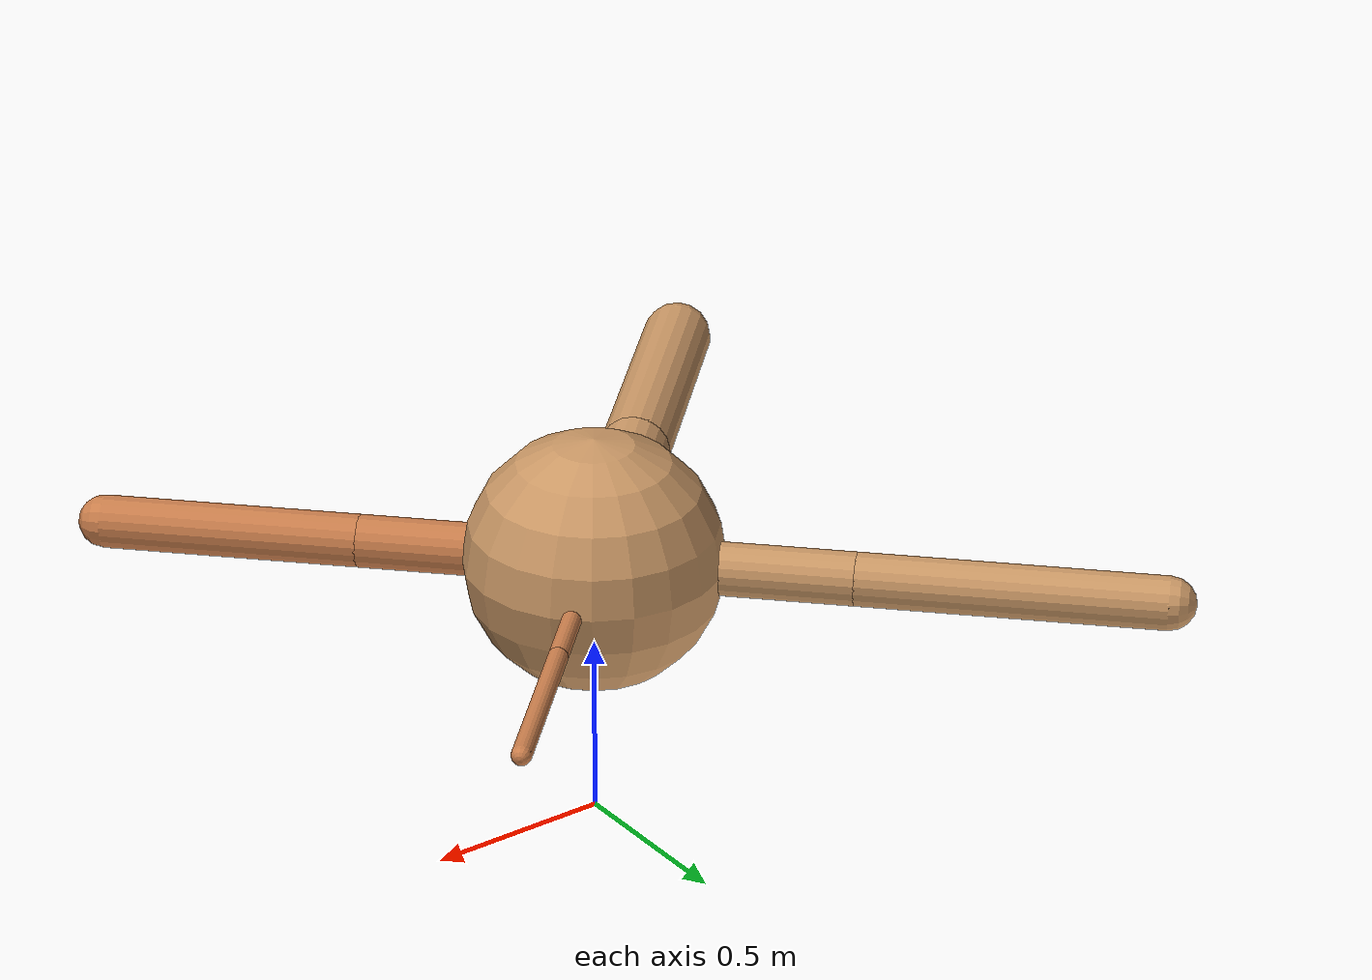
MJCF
<?xml version="1.0" ?>
<mujoco model="ant">

	<compiler angle="degree" coordinate="local" inertiafromgeom="true"/>

	<option integrator="RK4" timestep="0.01"/>

	<custom>

		<numeric data="0.0 0.0 0.55 1.0 0.0 0.0 0.0 0.0 1.0 0.0 -1.0 0.0 -1.0 0.0 1.0" name="init_qpos"/>

	</custom>

	<default>

		<joint armature="1" damping="1" limited="true"/>

		<geom conaffinity="0" condim="3" density="5.0" friction="1.5 0.1 0.1" margin="0.01" rgba="0.8 0.6 0.4 1"/>

	</default>

	<worldbody>

		<body name="torso" pos="0 0 0.75">

			<geom name="torso_geom" pos="0 0 0" size="0.3483419177617526" type="sphere"/>

			<!--joint armature="0" damping="0" limited="false" margin="0.01" name="root" pos="0 0 0" type="free"/-->

			<body name="front_left_leg" pos="0 0 0">

				<geom fromto="0 0 0 0.2 0.2 0" name="aux_1_geom" size="0.026128383658355795" type="capsule" rgba=".8 .5 .3 1"/>

				<body name="aux_1" pos="0.2 0.2 0">

					<joint axis="0 0 1" name="hip_1" pos="0.0 0.0 0.0" range="-40 40" type="hinge"/>

					<geom fromto="0 0 0 0.17675719853632055 0.17675719853632055 0" name="left_leg_geom" size="0.026128383658355795" type="capsule" rgba=".8 .5 .3 1"/>

					<body pos="0.17675719853632055 0.17675719853632055 0" name="front_left_foot">

						<joint axis="-1 1 0" name="ankle_1" pos="0.0 0.0 0.0" range="30 100" type="hinge"/>

						<geom fromto="0 0 0 0.3535143970726411 0.3535143970726411 0" name="left_ankle_geom" size="0.026128383658355795" type="capsule" rgba=".8 .5 .3 1"/>

					</body>

				</body>

			</body>

			<body name="front_right_leg" pos="0 0 0">

				<geom fromto="0 0 0 -0.2 0.2 0" name="aux_2_geom" size="0.07100722201231034" type="capsule"/>

				<body name="aux_2" pos="-0.2 0.2 0">

					<joint axis="0 0 1" name="hip_2" pos="0.0 0.0 0.0" range="-40 40" type="hinge"/>

					<geom fromto="0 0 0 -0.2872693187417079 0.2872693187417079 0" name="right_leg_geom" size="0.07100722201231034" type="capsule"/>

					<body pos="-0.2872693187417079 0.2872693187417079 0" name="front_right_foot">

						<joint axis="1 1 0" name="ankle_2" pos="0.0 0.0 0.0" range="-100 -30" type="hinge"/>

						<geom fromto="0 0 0 -0.5745386374834158 0.5745386374834158 0" name="right_ankle_geom" size="0.07100722201231034" type="capsule"/>

					</body>

				</body>

			</body>

			<body name="left_back_leg" pos="0 0 0">

				<geom fromto="0 0 0 -0.2 -0.2 0" name="aux_3_geom" size="0.0975619858933116" type="capsule"/>

				<body name="aux_3" pos="-0.2 -0.2 0">

					<joint axis="0 0 1" name="hip_3" pos="0.0 0.0 0.0" range="-40 40" type="hinge"/>

					<geom fromto="0 0 0 -0.26432728597812943 -0.26432728597812943 0" name="back_leg_geom" size="0.0975619858933116" type="capsule"/>

					<body pos="-0.26432728597812943 -0.26432728597812943 0" name="left_back_foot">

						<joint axis="-1 1 0" name="ankle_3" pos="0.0 0.0 0.0" range="-100 -30" type="hinge"/>

						<geom fromto="0 0 0 -0.5286545719562589 -0.5286545719562589 0" name="third_ankle_geom" size="0.0975619858933116" type="capsule"/>

					</body>

				</body>

			</body>

			<body name="right_back_leg" pos="0 0 0">

				<geom fromto="0 0 0 0.2 -0.2 0" name="aux_4_geom" size="0.07038729236264525" type="capsule" rgba=".8 .5 .3 1"/>

				<body name="aux_4" pos="0.2 -0.2 0">

					<joint axis="0 0 1" name="hip_4" pos="0.0 0.0 0.0" range="-40 40" type="hinge"/>

					<geom fromto="0 0 0 0.24501288128075013 -0.24501288128075013 0" name="rightback_leg_geom" size="0.07038729236264525" type="capsule" rgba=".8 .5 .3 1"/>

					<body pos="0.24501288128075013 -0.24501288128075013 0" name="right_back_foot">

						<joint axis="1 1 0" name="ankle_4" pos="0.0 0.0 0.0" range="30 100" type="hinge"/>

						<geom fromto="0 0 0 0.49002576256150027 -0.49002576256150027 0" name="fourth_ankle_geom" size="0.07038729236264525" type="capsule" rgba=".8 .5 .3 1"/>

					</body>

				</body>

			</body>

		</body>

	</worldbody>

	<actuator>

		<motor ctrllimited="true" ctrlrange="-1.0 1.0" joint="hip_4" gear="150"/>

		<motor ctrllimited="true" ctrlrange="-1.0 1.0" joint="ankle_4" gear="150"/>

		<motor ctrllimited="true" ctrlrange="-1.0 1.0" joint="hip_1" gear="150"/>

		<motor ctrllimited="true" ctrlrange="-1.0 1.0" joint="ankle_1" gear="150"/>

		<motor ctrllimited="true" ctrlrange="-1.0 1.0" joint="hip_2" gear="150"/>

		<motor ctrllimited="true" ctrlrange="-1.0 1.0" joint="ankle_2" gear="150"/>

		<motor ctrllimited="true" ctrlrange="-1.0 1.0" joint="hip_3" gear="150"/>

		<motor ctrllimited="true" ctrlrange="-1.0 1.0" joint="ankle_3" gear="150"/>

	</actuator>

</mujoco>
